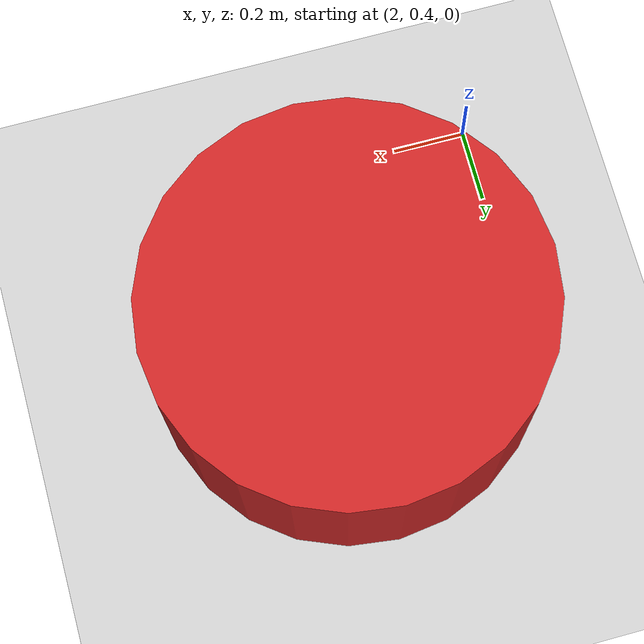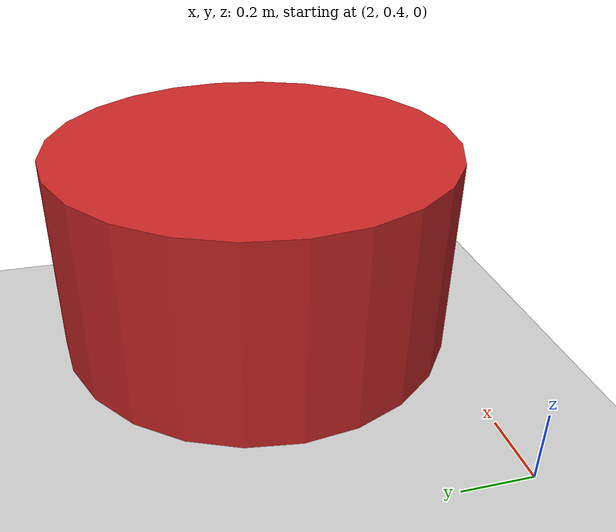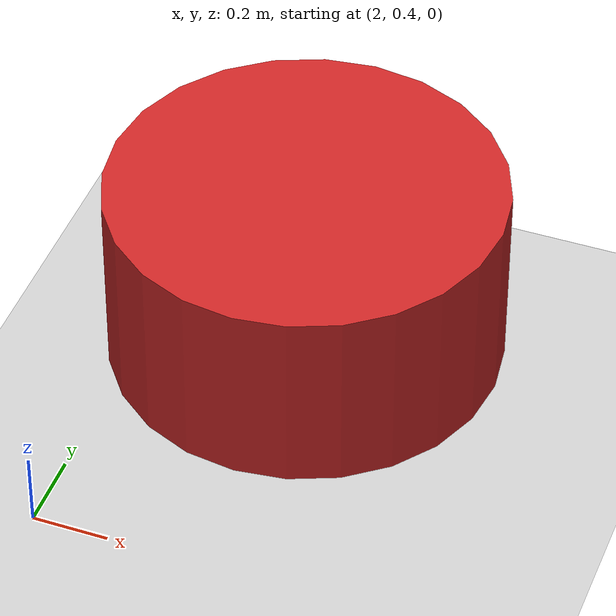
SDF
<sdf version='1.7'>
  <world name='default'>
    <light name='sun' type='directional'>
      <cast_shadows>1</cast_shadows>
      <pose>0 0 10 0 -0 0</pose>
      <diffuse>0.8 0.8 0.8 1</diffuse>
      <specular>0.2 0.2 0.2 1</specular>
      <attenuation>
        <range>1000</range>
        <constant>0.9</constant>
        <linear>0.01</linear>
        <quadratic>0.001</quadratic>
      </attenuation>
      <direction>-0.5 0.1 -0.9</direction>
      <spot>
        <inner_angle>0</inner_angle>
        <outer_angle>0</outer_angle>
        <falloff>0</falloff>
      </spot>
    </light>

    <!-- ================= gz-sim systems (Harmonic) ================= -->
    <plugin filename="gz-sim-physics-system"
            name="gz::sim::systems::Physics"/>
    <plugin filename="gz-sim-scene-broadcaster-system"
            name="gz::sim::systems::SceneBroadcaster"/>
    <plugin filename="gz-sim-user-commands-system"
            name="gz::sim::systems::UserCommands"/>

    <plugin filename="gz-sim-sensors-system"
            name="gz::sim::systems::Sensors">
      <render_engine>ogre2</render_engine>
    </plugin>

    <model name='ground_plane'>
      <static>1</static>
      <link name='link'>
        <collision name='collision'>
          <geometry>
            <plane>
              <normal>0 0 1</normal>
              <size>100 100</size>
            </plane>
          </geometry>
          <surface>
            <friction>
              <ode>
                <mu>100</mu>
                <mu2>50</mu2>
              </ode>
              <torsional>
                <ode/>
              </torsional>
            </friction>
            <contact>
              <ode/>
            </contact>
            <bounce/>
          </surface>
          <max_contacts>10</max_contacts>
        </collision>
        <visual name='visual'>
          <cast_shadows>0</cast_shadows>
          <geometry>
            <plane>
              <normal>0 0 1</normal>
              <size>100 100</size>
            </plane>
          </geometry>
          <material>
            <script>
              <uri>file://media/materials/scripts/gazebo.material</uri>
              <name>Gazebo/Grey</name>
            </script>
          </material>
        </visual>
        <self_collide>0</self_collide>
        <enable_wind>0</enable_wind>
        <kinematic>0</kinematic>
      </link>
    </model>

    <gravity>0 0 -9.8</gravity>
    <magnetic_field>6e-06 2.3e-05 -4.2e-05</magnetic_field>
    <atmosphere type='adiabatic'/>
    <physics type='ode'>
      <max_step_size>0.001</max_step_size>
      <real_time_factor>1</real_time_factor>
      <real_time_update_rate>1000</real_time_update_rate>
    </physics>
    <scene>
      <ambient>0.4 0.4 0.4 1</ambient>
      <background>0.7 0.7 0.7 1</background>
      <shadows>1</shadows>
    </scene>
    <audio>
      <device>default</device>
    </audio>
    <wind/>
    <spherical_coordinates>
      <surface_model>EARTH_WGS84</surface_model>
      <latitude_deg>0</latitude_deg>
      <longitude_deg>0</longitude_deg>
      <elevation>0</elevation>
      <heading_deg>0</heading_deg>
    </spherical_coordinates>

    <gui fullscreen='0'>
      <camera name='user_camera'>
        <pose>4.14193 -1.98691 12.119 0 1.3098 1.4842</pose>
        <view_controller>orbit</view_controller>
        <projection_type>perspective</projection_type>
      </camera>
    </gui>

    <model name='cylinder'>
      <pose>2.5 1.0 0.5 0 -0 0</pose>
      <link name='link'>
        <inertial>
          <mass>8</mass>
          <inertia>
            <ixx>0.66667</ixx>
            <ixy>0</ixy>
            <ixz>0</ixz>
            <iyy>0.666667</iyy>
            <iyz>0</iyz>
            <izz>1.0</izz>
          </inertia>
          <pose>0 0 0 0 -0 0</pose>
        </inertial>
        <collision name='collision'>
          <geometry>
            <cylinder>
              <radius>0.5</radius>
              <length>0.5</length>
            </cylinder>
          </geometry>
          <max_contacts>10</max_contacts>
          <surface>
            <contact>
              <ode/>
            </contact>
            <bounce/>
            <friction>
              <torsional>
                <ode/>
              </torsional>
              <ode/>
            </friction>
          </surface>
        </collision>
        <visual name='visual'>
          <geometry>
            <cylinder>
              <radius>0.5</radius>
              <length>0.5</length>
            </cylinder>
          </geometry>
          <material>
            <script>
              <name>Gazebo/Red</name>
              <uri>file://media/materials/scripts/gazebo.material</uri>
            </script>
          </material>
        </visual>
        <self_collide>0</self_collide>
        <enable_wind>0</enable_wind>
        <kinematic>0</kinematic>
      </link>
    </model>
  </world>
</sdf>
